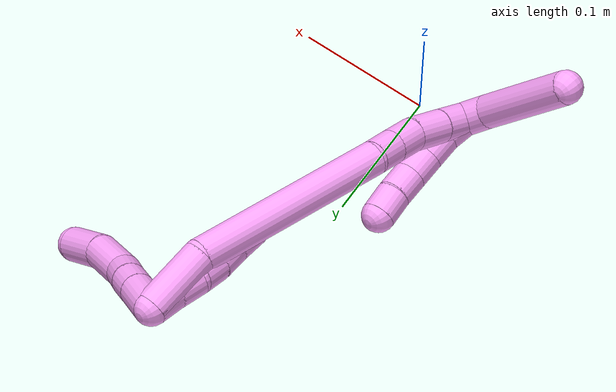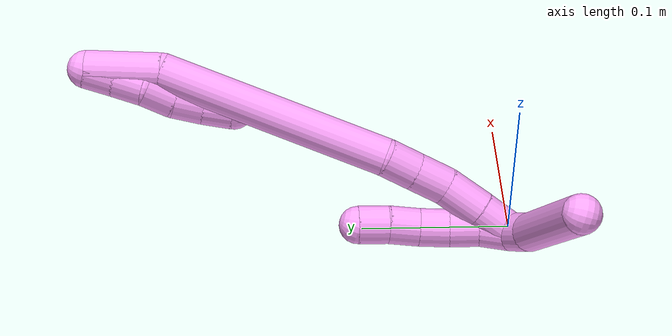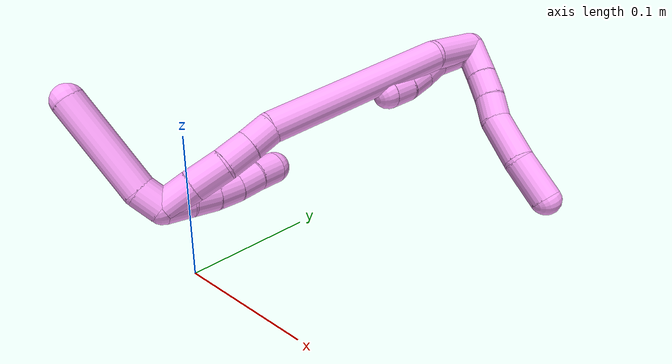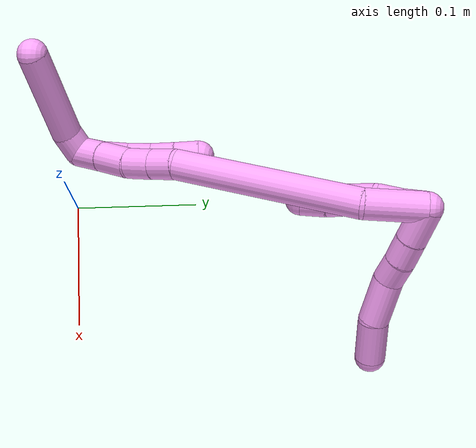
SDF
<sdf version="1.7">
 <world name="default">
  <model name="4">
   <static>0</static>
   <link name="4">
    <collision name="collision-cylinder-e_1_2_8">
     <pose>0.013207 0.004829 -0.006526 -2.5045 1.01965 -2.07581</pose>
     <geometry><cylinder><radius>0.0125</radius><length>0.031006</length></cylinder></geometry>
     <surface>
      <friction><ode><mu>1.16</mu><mu2>1.16</mu2><slip1>0</slip1><slip2>0</slip2></ode></friction>
      <contact><ode><kp>1e+06</kp><kd>1</kd><max_vel>0</max_vel><min_depth>0.001</min_depth></ode></contact>
     </surface>
    </collision>
    <visual name="visual-cylinder-e_1_2_8">
     <pose>0.013207 0.004829 -0.006526 -2.5045 1.01965 -2.07581</pose>
     <geometry><cylinder><radius>0.0125</radius><length>0.031006</length></cylinder></geometry>
     <material><ambient>1 0.65098 0.996078 1</ambient></material>
    </visual>
    <collision name="collision-cylinder-e_2_8_9">
     <pose>0.035425 0.013478 -0.017581 -2.44104 0.989086 -1.95065</pose>
     <geometry><cylinder><radius>0.0125</radius><length>0.021569</length></cylinder></geometry>
     <surface>
      <friction><ode><mu>1.16</mu><mu2>1.16</mu2><slip1>0</slip1><slip2>0</slip2></ode></friction>
      <contact><ode><kp>1e+06</kp><kd>1</kd><max_vel>0</max_vel><min_depth>0.001</min_depth></ode></contact>
     </surface>
    </collision>
    <visual name="visual-cylinder-e_2_8_9">
     <pose>0.035425 0.013478 -0.017581 -2.44104 0.989086 -1.95065</pose>
     <geometry><cylinder><radius>0.0125</radius><length>0.021569</length></cylinder></geometry>
     <material><ambient>1 0.65098 0.996078 1</ambient></material>
    </visual>
    <collision name="collision-cylinder-e_3_9_10">
     <pose>0.052556 0.021677 -0.027039 -2.41509 0.888883 -1.7943</pose>
     <geometry><cylinder><radius>0.0125</radius><length>0.020918</length></cylinder></geometry>
     <surface>
      <friction><ode><mu>1.16</mu><mu2>1.16</mu2><slip1>0</slip1><slip2>0</slip2></ode></friction>
      <contact><ode><kp>1e+06</kp><kd>1</kd><max_vel>0</max_vel><min_depth>0.001</min_depth></ode></contact>
     </surface>
    </collision>
    <visual name="visual-cylinder-e_3_9_10">
     <pose>0.052556 0.021677 -0.027039 -2.41509 0.888883 -1.7943</pose>
     <geometry><cylinder><radius>0.0125</radius><length>0.020918</length></cylinder></geometry>
     <material><ambient>1 0.65098 0.996078 1</ambient></material>
    </visual>
    <collision name="collision-cylinder-e_4_10_11">
     <pose>0.078523 0.031433 -0.038227 -2.43201 1.13766 -2.09123</pose>
     <geometry><cylinder><radius>0.0125</radius><length>0.039324</length></cylinder></geometry>
     <surface>
      <friction><ode><mu>1.16</mu><mu2>1.16</mu2><slip1>0</slip1><slip2>0</slip2></ode></friction>
      <contact><ode><kp>1e+06</kp><kd>1</kd><max_vel>0</max_vel><min_depth>0.001</min_depth></ode></contact>
     </surface>
    </collision>
    <visual name="visual-cylinder-e_4_10_11">
     <pose>0.078523 0.031433 -0.038227 -2.43201 1.13766 -2.09123</pose>
     <geometry><cylinder><radius>0.0125</radius><length>0.039324</length></cylinder></geometry>
     <material><ambient>1 0.65098 0.996078 1</ambient></material>
    </visual>
    <collision name="collision-cylinder-e_5_11_6">
     <pose>0.113171 0.044451 -0.046712 -1.85401 1.12841 -1.40112</pose>
     <geometry><cylinder><radius>0.0125</radius><length>0.037183</length></cylinder></geometry>
     <surface>
      <friction><ode><mu>1.16</mu><mu2>1.16</mu2><slip1>0</slip1><slip2>0</slip2></ode></friction>
      <contact><ode><kp>1e+06</kp><kd>1</kd><max_vel>0</max_vel><min_depth>0.001</min_depth></ode></contact>
     </surface>
    </collision>
    <visual name="visual-cylinder-e_5_11_6">
     <pose>0.113171 0.044451 -0.046712 -1.85401 1.12841 -1.40112</pose>
     <geometry><cylinder><radius>0.0125</radius><length>0.037183</length></cylinder></geometry>
     <material><ambient>1 0.65098 0.996078 1</ambient></material>
    </visual>
    <collision name="collision-cylinder-e_1_2_12">
     <pose>-0.000589 -6.9e-05 -0.009982 3.13466 -0.058922 -2.90739</pose>
     <geometry><cylinder><radius>0.0125</radius><length>0.02</length></cylinder></geometry>
     <surface>
      <friction><ode><mu>1.16</mu><mu2>1.16</mu2><slip1>0</slip1><slip2>0</slip2></ode></friction>
      <contact><ode><kp>1e+06</kp><kd>1</kd><max_vel>0</max_vel><min_depth>0.001</min_depth></ode></contact>
     </surface>
    </collision>
    <visual name="visual-cylinder-e_1_2_12">
     <pose>-0.000589 -6.9e-05 -0.009982 3.13466 -0.058922 -2.90739</pose>
     <geometry><cylinder><radius>0.0125</radius><length>0.02</length></cylinder></geometry>
     <material><ambient>1 0.65098 0.996078 1</ambient></material>
    </visual>
    <collision name="collision-cylinder-e_2_12_13">
     <pose>-0.002796 -0.000474 -0.029827 3.10755 -0.162528 -2.72945</pose>
     <geometry><cylinder><radius>0.0125</radius><length>0.02</length></cylinder></geometry>
     <surface>
      <friction><ode><mu>1.16</mu><mu2>1.16</mu2><slip1>0</slip1><slip2>0</slip2></ode></friction>
      <contact><ode><kp>1e+06</kp><kd>1</kd><max_vel>0</max_vel><min_depth>0.001</min_depth></ode></contact>
     </surface>
    </collision>
    <visual name="visual-cylinder-e_2_12_13">
     <pose>-0.002796 -0.000474 -0.029827 3.10755 -0.162528 -2.72945</pose>
     <geometry><cylinder><radius>0.0125</radius><length>0.02</length></cylinder></geometry>
     <material><ambient>1 0.65098 0.996078 1</ambient></material>
    </visual>
    <collision name="collision-cylinder-e_3_13_14">
     <pose>-0.003614 0.00086 -0.049517 -2.97321 0.080113 -0.886757</pose>
     <geometry><cylinder><radius>0.0125</radius><length>0.02</length></cylinder></geometry>
     <surface>
      <friction><ode><mu>1.16</mu><mu2>1.16</mu2><slip1>0</slip1><slip2>0</slip2></ode></friction>
      <contact><ode><kp>1e+06</kp><kd>1</kd><max_vel>0</max_vel><min_depth>0.001</min_depth></ode></contact>
     </surface>
    </collision>
    <visual name="visual-cylinder-e_3_13_14">
     <pose>-0.003614 0.00086 -0.049517 -2.97321 0.080113 -0.886757</pose>
     <geometry><cylinder><radius>0.0125</radius><length>0.02</length></cylinder></geometry>
     <material><ambient>1 0.65098 0.996078 1</ambient></material>
    </visual>
    <collision name="collision-cylinder-e_4_14_15">
     <pose>-0.001673 0.002369 -0.069277 3.12535 0.114248 2.85945</pose>
     <geometry><cylinder><radius>0.0125</radius><length>0.02</length></cylinder></geometry>
     <surface>
      <friction><ode><mu>1.16</mu><mu2>1.16</mu2><slip1>0</slip1><slip2>0</slip2></ode></friction>
      <contact><ode><kp>1e+06</kp><kd>1</kd><max_vel>0</max_vel><min_depth>0.001</min_depth></ode></contact>
     </surface>
    </collision>
    <visual name="visual-cylinder-e_4_14_15">
     <pose>-0.001673 0.002369 -0.069277 3.12535 0.114248 2.85945</pose>
     <geometry><cylinder><radius>0.0125</radius><length>0.02</length></cylinder></geometry>
     <material><ambient>1 0.65098 0.996078 1</ambient></material>
    </visual>
    <collision name="collision-cylinder-e_5_15_5">
     <pose>-0.000867 0.000823 -0.089109 3.00257 -0.033399 -0.470852</pose>
     <geometry><cylinder><radius>0.0125</radius><length>0.02</length></cylinder></geometry>
     <surface>
      <friction><ode><mu>1.16</mu><mu2>1.16</mu2><slip1>0</slip1><slip2>0</slip2></ode></friction>
      <contact><ode><kp>1e+06</kp><kd>1</kd><max_vel>0</max_vel><min_depth>0.001</min_depth></ode></contact>
     </surface>
    </collision>
    <visual name="visual-cylinder-e_5_15_5">
     <pose>-0.000867 0.000823 -0.089109 3.00257 -0.033399 -0.470852</pose>
     <geometry><cylinder><radius>0.0125</radius><length>0.02</length></cylinder></geometry>
     <material><ambient>1 0.65098 0.996078 1</ambient></material>
    </visual>
    <collision name="collision-cylinder-e_1_2_16">
     <pose>-0.000782 -0.006534 -0.02374 2.873 -0.031746 -0.233917</pose>
     <geometry><cylinder><radius>0.0125</radius><length>0.04927</length></cylinder></geometry>
     <surface>
      <friction><ode><mu>1.16</mu><mu2>1.16</mu2><slip1>0</slip1><slip2>0</slip2></ode></friction>
      <contact><ode><kp>1e+06</kp><kd>1</kd><max_vel>0</max_vel><min_depth>0.001</min_depth></ode></contact>
     </surface>
    </collision>
    <visual name="visual-cylinder-e_1_2_16">
     <pose>-0.000782 -0.006534 -0.02374 2.873 -0.031746 -0.233917</pose>
     <geometry><cylinder><radius>0.0125</radius><length>0.04927</length></cylinder></geometry>
     <material><ambient>1 0.65098 0.996078 1</ambient></material>
    </visual>
    <collision name="collision-cylinder-e_2_16_17">
     <pose>-0.01324 -0.010103 -0.123723 -3.10272 -0.151849 2.64126</pose>
     <geometry><cylinder><radius>0.0125</radius><length>0.154379</length></cylinder></geometry>
     <surface>
      <friction><ode><mu>1.16</mu><mu2>1.16</mu2><slip1>0</slip1><slip2>0</slip2></ode></friction>
      <contact><ode><kp>1e+06</kp><kd>1</kd><max_vel>0</max_vel><min_depth>0.001</min_depth></ode></contact>
     </surface>
    </collision>
    <visual name="visual-cylinder-e_2_16_17">
     <pose>-0.01324 -0.010103 -0.123723 -3.10272 -0.151849 2.64126</pose>
     <geometry><cylinder><radius>0.0125</radius><length>0.154379</length></cylinder></geometry>
     <material><ambient>1 0.65098 0.996078 1</ambient></material>
    </visual>
    <collision name="collision-cylinder-e_3_17_18">
     <pose>-0.024409 -0.004959 -0.210268 -2.93309 0.04815 -0.452404</pose>
     <geometry><cylinder><radius>0.0125</radius><length>0.021082</length></cylinder></geometry>
     <surface>
      <friction><ode><mu>1.16</mu><mu2>1.16</mu2><slip1>0</slip1><slip2>0</slip2></ode></friction>
      <contact><ode><kp>1e+06</kp><kd>1</kd><max_vel>0</max_vel><min_depth>0.001</min_depth></ode></contact>
     </surface>
    </collision>
    <visual name="visual-cylinder-e_3_17_18">
     <pose>-0.024409 -0.004959 -0.210268 -2.93309 0.04815 -0.452404</pose>
     <geometry><cylinder><radius>0.0125</radius><length>0.021082</length></cylinder></geometry>
     <material><ambient>1 0.65098 0.996078 1</ambient></material>
    </visual>
    <collision name="collision-cylinder-e_4_18_19">
     <pose>-0.02372 -0.000592 -0.231815 -2.9495 0.015855 -0.1642</pose>
     <geometry><cylinder><radius>0.0125</radius><length>0.022919</length></cylinder></geometry>
     <surface>
      <friction><ode><mu>1.16</mu><mu2>1.16</mu2><slip1>0</slip1><slip2>0</slip2></ode></friction>
      <contact><ode><kp>1e+06</kp><kd>1</kd><max_vel>0</max_vel><min_depth>0.001</min_depth></ode></contact>
     </surface>
    </collision>
    <visual name="visual-cylinder-e_4_18_19">
     <pose>-0.02372 -0.000592 -0.231815 -2.9495 0.015855 -0.1642</pose>
     <geometry><cylinder><radius>0.0125</radius><length>0.022919</length></cylinder></geometry>
     <material><ambient>1 0.65098 0.996078 1</ambient></material>
    </visual>
    <collision name="collision-cylinder-e_5_19_20">
     <pose>-0.02549 0.005566 -0.256 -2.84387 -0.143278 0.892598</pose>
     <geometry><cylinder><radius>0.0125</radius><length>0.027345</length></cylinder></geometry>
     <surface>
      <friction><ode><mu>1.16</mu><mu2>1.16</mu2><slip1>0</slip1><slip2>0</slip2></ode></friction>
      <contact><ode><kp>1e+06</kp><kd>1</kd><max_vel>0</max_vel><min_depth>0.001</min_depth></ode></contact>
     </surface>
    </collision>
    <visual name="visual-cylinder-e_5_19_20">
     <pose>-0.02549 0.005566 -0.256 -2.84387 -0.143278 0.892598</pose>
     <geometry><cylinder><radius>0.0125</radius><length>0.027345</length></cylinder></geometry>
     <material><ambient>1 0.65098 0.996078 1</ambient></material>
    </visual>
    <collision name="collision-cylinder-e_6_20_1">
     <pose>-0.028915 0.013522 -0.280695 -2.81466 -0.118049 0.688057</pose>
     <geometry><cylinder><radius>0.0125</radius><length>0.025005</length></cylinder></geometry>
     <surface>
      <friction><ode><mu>1.16</mu><mu2>1.16</mu2><slip1>0</slip1><slip2>0</slip2></ode></friction>
      <contact><ode><kp>1e+06</kp><kd>1</kd><max_vel>0</max_vel><min_depth>0.001</min_depth></ode></contact>
     </surface>
    </collision>
    <visual name="visual-cylinder-e_6_20_1">
     <pose>-0.028915 0.013522 -0.280695 -2.81466 -0.118049 0.688057</pose>
     <geometry><cylinder><radius>0.0125</radius><length>0.025005</length></cylinder></geometry>
     <material><ambient>1 0.65098 0.996078 1</ambient></material>
    </visual>
    <collision name="collision-cylinder-e_1_1_21">
     <pose>-0.028712 0.019618 -0.282822 -0.215551 0.168402 -0.018263</pose>
     <geometry><cylinder><radius>0.0125</radius><length>0.02</length></cylinder></geometry>
     <surface>
      <friction><ode><mu>1.16</mu><mu2>1.16</mu2><slip1>0</slip1><slip2>0</slip2></ode></friction>
      <contact><ode><kp>1e+06</kp><kd>1</kd><max_vel>0</max_vel><min_depth>0.001</min_depth></ode></contact>
     </surface>
    </collision>
    <visual name="visual-cylinder-e_1_1_21">
     <pose>-0.028712 0.019618 -0.282822 -0.215551 0.168402 -0.018263</pose>
     <geometry><cylinder><radius>0.0125</radius><length>0.02</length></cylinder></geometry>
     <material><ambient>1 0.65098 0.996078 1</ambient></material>
    </visual>
    <collision name="collision-cylinder-e_2_21_22">
     <pose>-0.026532 0.025096 -0.26379 -0.344072 0.050342 -0.008749</pose>
     <geometry><cylinder><radius>0.0125</radius><length>0.02</length></cylinder></geometry>
     <surface>
      <friction><ode><mu>1.16</mu><mu2>1.16</mu2><slip1>0</slip1><slip2>0</slip2></ode></friction>
      <contact><ode><kp>1e+06</kp><kd>1</kd><max_vel>0</max_vel><min_depth>0.001</min_depth></ode></contact>
     </surface>
    </collision>
    <visual name="visual-cylinder-e_2_21_22">
     <pose>-0.026532 0.025096 -0.26379 -0.344072 0.050342 -0.008749</pose>
     <geometry><cylinder><radius>0.0125</radius><length>0.02</length></cylinder></geometry>
     <material><ambient>1 0.65098 0.996078 1</ambient></material>
    </visual>
    <collision name="collision-cylinder-e_3_22_23">
     <pose>-0.026172 0.031018 -0.24472 -0.258177 -0.014334 0.001861</pose>
     <geometry><cylinder><radius>0.0125</radius><length>0.02</length></cylinder></geometry>
     <surface>
      <friction><ode><mu>1.16</mu><mu2>1.16</mu2><slip1>0</slip1><slip2>0</slip2></ode></friction>
      <contact><ode><kp>1e+06</kp><kd>1</kd><max_vel>0</max_vel><min_depth>0.001</min_depth></ode></contact>
     </surface>
    </collision>
    <visual name="visual-cylinder-e_3_22_23">
     <pose>-0.026172 0.031018 -0.24472 -0.258177 -0.014334 0.001861</pose>
     <geometry><cylinder><radius>0.0125</radius><length>0.02</length></cylinder></geometry>
     <material><ambient>1 0.65098 0.996078 1</ambient></material>
    </visual>
    <collision name="collision-cylinder-e_4_23_24">
     <pose>-0.027058 0.035195 -0.225214 -0.16361 -0.074304 0.006095</pose>
     <geometry><cylinder><radius>0.0125</radius><length>0.02</length></cylinder></geometry>
     <surface>
      <friction><ode><mu>1.16</mu><mu2>1.16</mu2><slip1>0</slip1><slip2>0</slip2></ode></friction>
      <contact><ode><kp>1e+06</kp><kd>1</kd><max_vel>0</max_vel><min_depth>0.001</min_depth></ode></contact>
     </surface>
    </collision>
    <visual name="visual-cylinder-e_4_23_24">
     <pose>-0.027058 0.035195 -0.225214 -0.16361 -0.074304 0.006095</pose>
     <geometry><cylinder><radius>0.0125</radius><length>0.02</length></cylinder></geometry>
     <material><ambient>1 0.65098 0.996078 1</ambient></material>
    </visual>
    <collision name="collision-cylinder-e_5_24_4">
     <pose>-0.028707 0.039429 -0.205764 -0.265188 -0.090803 0.012119</pose>
     <geometry><cylinder><radius>0.0125</radius><length>0.02</length></cylinder></geometry>
     <surface>
      <friction><ode><mu>1.16</mu><mu2>1.16</mu2><slip1>0</slip1><slip2>0</slip2></ode></friction>
      <contact><ode><kp>1e+06</kp><kd>1</kd><max_vel>0</max_vel><min_depth>0.001</min_depth></ode></contact>
     </surface>
    </collision>
    <visual name="visual-cylinder-e_5_24_4">
     <pose>-0.028707 0.039429 -0.205764 -0.265188 -0.090803 0.012119</pose>
     <geometry><cylinder><radius>0.0125</radius><length>0.02</length></cylinder></geometry>
     <material><ambient>1 0.65098 0.996078 1</ambient></material>
    </visual>
    <collision name="collision-cylinder-e_1_1_25">
     <pose>-0.038237 0.012408 -0.296374 2.22618 -0.884155 -1.53089</pose>
     <geometry><cylinder><radius>0.0125</radius><length>0.020299</length></cylinder></geometry>
     <surface>
      <friction><ode><mu>1.16</mu><mu2>1.16</mu2><slip1>0</slip1><slip2>0</slip2></ode></friction>
      <contact><ode><kp>1e+06</kp><kd>1</kd><max_vel>0</max_vel><min_depth>0.001</min_depth></ode></contact>
     </surface>
    </collision>
    <visual name="visual-cylinder-e_1_1_25">
     <pose>-0.038237 0.012408 -0.296374 2.22618 -0.884155 -1.53089</pose>
     <geometry><cylinder><radius>0.0125</radius><length>0.020299</length></cylinder></geometry>
     <material><ambient>1 0.65098 0.996078 1</ambient></material>
    </visual>
    <collision name="collision-cylinder-e_2_25_3">
     <pose>-0.077659 -0.016509 -0.305201 1.77391 -0.91451 -1.08627</pose>
     <geometry><cylinder><radius>0.0125</radius><length>0.079701</length></cylinder></geometry>
     <surface>
      <friction><ode><mu>1.16</mu><mu2>1.16</mu2><slip1>0</slip1><slip2>0</slip2></ode></friction>
      <contact><ode><kp>1e+06</kp><kd>1</kd><max_vel>0</max_vel><min_depth>0.001</min_depth></ode></contact>
     </surface>
    </collision>
    <visual name="visual-cylinder-e_2_25_3">
     <pose>-0.077659 -0.016509 -0.305201 1.77391 -0.91451 -1.08627</pose>
     <geometry><cylinder><radius>0.0125</radius><length>0.079701</length></cylinder></geometry>
     <material><ambient>1 0.65098 0.996078 1</ambient></material>
    </visual>
    <collision name="collision-sphere-3">
     <pose>-0.109231 -0.040325 -0.310106 0 -0 0</pose>
     <geometry><sphere><radius>0.0125</radius></sphere></geometry>
     <surface>
      <friction><ode><mu>1.16</mu><mu2>1.16</mu2><slip1>0</slip1><slip2>0</slip2></ode></friction>
      <contact><ode><kp>1e+06</kp><kd>1</kd><max_vel>0</max_vel><min_depth>0.001</min_depth></ode></contact>
     </surface>
    </collision>
    <visual name="visual-sphere-3">
     <pose>-0.109231 -0.040325 -0.310106 0 -0 0</pose>
     <geometry><sphere><radius>0.0125</radius></sphere></geometry>
     <material><ambient>1 0.65098 0.996078 1</ambient></material>
    </visual>
    <collision name="collision-sphere-25">
     <pose>-0.046086 0.007307 -0.300296 0 -0 0</pose>
     <geometry><sphere><radius>0.0125</radius></sphere></geometry>
     <surface>
      <friction><ode><mu>1.16</mu><mu2>1.16</mu2><slip1>0</slip1><slip2>0</slip2></ode></friction>
      <contact><ode><kp>1e+06</kp><kd>1</kd><max_vel>0</max_vel><min_depth>0.001</min_depth></ode></contact>
     </surface>
    </collision>
    <visual name="visual-sphere-25">
     <pose>-0.046086 0.007307 -0.300296 0 -0 0</pose>
     <geometry><sphere><radius>0.0125</radius></sphere></geometry>
     <material><ambient>1 0.65098 0.996078 1</ambient></material>
    </visual>
    <collision name="collision-sphere-4">
     <pose>-0.029614 0.042039 -0.196153 0 -0 0</pose>
     <geometry><sphere><radius>0.0125</radius></sphere></geometry>
     <surface>
      <friction><ode><mu>1.16</mu><mu2>1.16</mu2><slip1>0</slip1><slip2>0</slip2></ode></friction>
      <contact><ode><kp>1e+06</kp><kd>1</kd><max_vel>0</max_vel><min_depth>0.001</min_depth></ode></contact>
     </surface>
    </collision>
    <visual name="visual-sphere-4">
     <pose>-0.029614 0.042039 -0.196153 0 -0 0</pose>
     <geometry><sphere><radius>0.0125</radius></sphere></geometry>
     <material><ambient>1 0.65098 0.996078 1</ambient></material>
    </visual>
    <collision name="collision-sphere-24">
     <pose>-0.027801 0.036819 -0.215374 0 -0 0</pose>
     <geometry><sphere><radius>0.0125</radius></sphere></geometry>
     <surface>
      <friction><ode><mu>1.16</mu><mu2>1.16</mu2><slip1>0</slip1><slip2>0</slip2></ode></friction>
      <contact><ode><kp>1e+06</kp><kd>1</kd><max_vel>0</max_vel><min_depth>0.001</min_depth></ode></contact>
     </surface>
    </collision>
    <visual name="visual-sphere-24">
     <pose>-0.027801 0.036819 -0.215374 0 -0 0</pose>
     <geometry><sphere><radius>0.0125</radius></sphere></geometry>
     <material><ambient>1 0.65098 0.996078 1</ambient></material>
    </visual>
    <collision name="collision-sphere-23">
     <pose>-0.026316 0.03357 -0.235053 0 -0 0</pose>
     <geometry><sphere><radius>0.0125</radius></sphere></geometry>
     <surface>
      <friction><ode><mu>1.16</mu><mu2>1.16</mu2><slip1>0</slip1><slip2>0</slip2></ode></friction>
      <contact><ode><kp>1e+06</kp><kd>1</kd><max_vel>0</max_vel><min_depth>0.001</min_depth></ode></contact>
     </surface>
    </collision>
    <visual name="visual-sphere-23">
     <pose>-0.026316 0.03357 -0.235053 0 -0 0</pose>
     <geometry><sphere><radius>0.0125</radius></sphere></geometry>
     <material><ambient>1 0.65098 0.996078 1</ambient></material>
    </visual>
    <collision name="collision-sphere-22">
     <pose>-0.026029 0.028465 -0.254388 0 -0 0</pose>
     <geometry><sphere><radius>0.0125</radius></sphere></geometry>
     <surface>
      <friction><ode><mu>1.16</mu><mu2>1.16</mu2><slip1>0</slip1><slip2>0</slip2></ode></friction>
      <contact><ode><kp>1e+06</kp><kd>1</kd><max_vel>0</max_vel><min_depth>0.001</min_depth></ode></contact>
     </surface>
    </collision>
    <visual name="visual-sphere-22">
     <pose>-0.026029 0.028465 -0.254388 0 -0 0</pose>
     <geometry><sphere><radius>0.0125</radius></sphere></geometry>
     <material><ambient>1 0.65098 0.996078 1</ambient></material>
    </visual>
    <collision name="collision-sphere-21">
     <pose>-0.027036 0.021727 -0.273192 0 -0 0</pose>
     <geometry><sphere><radius>0.0125</radius></sphere></geometry>
     <surface>
      <friction><ode><mu>1.16</mu><mu2>1.16</mu2><slip1>0</slip1><slip2>0</slip2></ode></friction>
      <contact><ode><kp>1e+06</kp><kd>1</kd><max_vel>0</max_vel><min_depth>0.001</min_depth></ode></contact>
     </surface>
    </collision>
    <visual name="visual-sphere-21">
     <pose>-0.027036 0.021727 -0.273192 0 -0 0</pose>
     <geometry><sphere><radius>0.0125</radius></sphere></geometry>
     <material><ambient>1 0.65098 0.996078 1</ambient></material>
    </visual>
    <collision name="collision-sphere-1">
     <pose>-0.030388 0.017509 -0.292453 0 -0 0</pose>
     <geometry><sphere><radius>0.0125</radius></sphere></geometry>
     <surface>
      <friction><ode><mu>1.16</mu><mu2>1.16</mu2><slip1>0</slip1><slip2>0</slip2></ode></friction>
      <contact><ode><kp>1e+06</kp><kd>1</kd><max_vel>0</max_vel><min_depth>0.001</min_depth></ode></contact>
     </surface>
    </collision>
    <visual name="visual-sphere-1">
     <pose>-0.030388 0.017509 -0.292453 0 -0 0</pose>
     <geometry><sphere><radius>0.0125</radius></sphere></geometry>
     <material><ambient>1 0.65098 0.996078 1</ambient></material>
    </visual>
    <collision name="collision-sphere-6">
     <pose>0.129972 0.052093 -0.048936 0 -0 0</pose>
     <geometry><sphere><radius>0.0125</radius></sphere></geometry>
     <surface>
      <friction><ode><mu>1.16</mu><mu2>1.16</mu2><slip1>0</slip1><slip2>0</slip2></ode></friction>
      <contact><ode><kp>1e+06</kp><kd>1</kd><max_vel>0</max_vel><min_depth>0.001</min_depth></ode></contact>
     </surface>
    </collision>
    <visual name="visual-sphere-6">
     <pose>0.129972 0.052093 -0.048936 0 -0 0</pose>
     <geometry><sphere><radius>0.0125</radius></sphere></geometry>
     <material><ambient>1 0.65098 0.996078 1</ambient></material>
    </visual>
    <collision name="collision-sphere-11">
     <pose>0.096369 0.036809 -0.044488 0 -0 0</pose>
     <geometry><sphere><radius>0.0125</radius></sphere></geometry>
     <surface>
      <friction><ode><mu>1.16</mu><mu2>1.16</mu2><slip1>0</slip1><slip2>0</slip2></ode></friction>
      <contact><ode><kp>1e+06</kp><kd>1</kd><max_vel>0</max_vel><min_depth>0.001</min_depth></ode></contact>
     </surface>
    </collision>
    <visual name="visual-sphere-11">
     <pose>0.096369 0.036809 -0.044488 0 -0 0</pose>
     <geometry><sphere><radius>0.0125</radius></sphere></geometry>
     <material><ambient>1 0.65098 0.996078 1</ambient></material>
    </visual>
    <collision name="collision-sphere-10">
     <pose>0.060676 0.026056 -0.031967 0 -0 0</pose>
     <geometry><sphere><radius>0.0125</radius></sphere></geometry>
     <surface>
      <friction><ode><mu>1.16</mu><mu2>1.16</mu2><slip1>0</slip1><slip2>0</slip2></ode></friction>
      <contact><ode><kp>1e+06</kp><kd>1</kd><max_vel>0</max_vel><min_depth>0.001</min_depth></ode></contact>
     </surface>
    </collision>
    <visual name="visual-sphere-10">
     <pose>0.060676 0.026056 -0.031967 0 -0 0</pose>
     <geometry><sphere><radius>0.0125</radius></sphere></geometry>
     <material><ambient>1 0.65098 0.996078 1</ambient></material>
    </visual>
    <collision name="collision-sphere-9">
     <pose>0.044436 0.017298 -0.022111 0 -0 0</pose>
     <geometry><sphere><radius>0.0125</radius></sphere></geometry>
     <surface>
      <friction><ode><mu>1.16</mu><mu2>1.16</mu2><slip1>0</slip1><slip2>0</slip2></ode></friction>
      <contact><ode><kp>1e+06</kp><kd>1</kd><max_vel>0</max_vel><min_depth>0.001</min_depth></ode></contact>
     </surface>
    </collision>
    <visual name="visual-sphere-9">
     <pose>0.044436 0.017298 -0.022111 0 -0 0</pose>
     <geometry><sphere><radius>0.0125</radius></sphere></geometry>
     <material><ambient>1 0.65098 0.996078 1</ambient></material>
    </visual>
    <collision name="collision-sphere-2">
     <geometry><sphere><radius>0.0125</radius></sphere></geometry>
     <surface>
      <friction><ode><mu>1.16</mu><mu2>1.16</mu2><slip1>0</slip1><slip2>0</slip2></ode></friction>
      <contact><ode><kp>1e+06</kp><kd>1</kd><max_vel>0</max_vel><min_depth>0.001</min_depth></ode></contact>
     </surface>
    </collision>
    <visual name="visual-sphere-2">
     <geometry><sphere><radius>0.0125</radius></sphere></geometry>
     <material><ambient>1 0.65098 0.996078 1</ambient></material>
    </visual>
    <collision name="collision-sphere-19">
     <pose>-0.023538 0.001596 -0.243063 0 -0 0</pose>
     <geometry><sphere><radius>0.0125</radius></sphere></geometry>
     <surface>
      <friction><ode><mu>1.16</mu><mu2>1.16</mu2><slip1>0</slip1><slip2>0</slip2></ode></friction>
      <contact><ode><kp>1e+06</kp><kd>1</kd><max_vel>0</max_vel><min_depth>0.001</min_depth></ode></contact>
     </surface>
    </collision>
    <visual name="visual-sphere-19">
     <pose>-0.023538 0.001596 -0.243063 0 -0 0</pose>
     <geometry><sphere><radius>0.0125</radius></sphere></geometry>
     <material><ambient>1 0.65098 0.996078 1</ambient></material>
    </visual>
    <collision name="collision-sphere-8">
     <pose>0.026414 0.009659 -0.013051 0 -0 0</pose>
     <geometry><sphere><radius>0.0125</radius></sphere></geometry>
     <surface>
      <friction><ode><mu>1.16</mu><mu2>1.16</mu2><slip1>0</slip1><slip2>0</slip2></ode></friction>
      <contact><ode><kp>1e+06</kp><kd>1</kd><max_vel>0</max_vel><min_depth>0.001</min_depth></ode></contact>
     </surface>
    </collision>
    <visual name="visual-sphere-8">
     <pose>0.026414 0.009659 -0.013051 0 -0 0</pose>
     <geometry><sphere><radius>0.0125</radius></sphere></geometry>
     <material><ambient>1 0.65098 0.996078 1</ambient></material>
    </visual>
    <collision name="collision-sphere-12">
     <pose>-0.001178 -0.000138 -0.019965 0 -0 0</pose>
     <geometry><sphere><radius>0.0125</radius></sphere></geometry>
     <surface>
      <friction><ode><mu>1.16</mu><mu2>1.16</mu2><slip1>0</slip1><slip2>0</slip2></ode></friction>
      <contact><ode><kp>1e+06</kp><kd>1</kd><max_vel>0</max_vel><min_depth>0.001</min_depth></ode></contact>
     </surface>
    </collision>
    <visual name="visual-sphere-12">
     <pose>-0.001178 -0.000138 -0.019965 0 -0 0</pose>
     <geometry><sphere><radius>0.0125</radius></sphere></geometry>
     <material><ambient>1 0.65098 0.996078 1</ambient></material>
    </visual>
    <collision name="collision-sphere-13">
     <pose>-0.004414 -0.00081 -0.03969 0 -0 0</pose>
     <geometry><sphere><radius>0.0125</radius></sphere></geometry>
     <surface>
      <friction><ode><mu>1.16</mu><mu2>1.16</mu2><slip1>0</slip1><slip2>0</slip2></ode></friction>
      <contact><ode><kp>1e+06</kp><kd>1</kd><max_vel>0</max_vel><min_depth>0.001</min_depth></ode></contact>
     </surface>
    </collision>
    <visual name="visual-sphere-13">
     <pose>-0.004414 -0.00081 -0.03969 0 -0 0</pose>
     <geometry><sphere><radius>0.0125</radius></sphere></geometry>
     <material><ambient>1 0.65098 0.996078 1</ambient></material>
    </visual>
    <collision name="collision-sphere-14">
     <pose>-0.002813 0.002531 -0.059344 0 -0 0</pose>
     <geometry><sphere><radius>0.0125</radius></sphere></geometry>
     <surface>
      <friction><ode><mu>1.16</mu><mu2>1.16</mu2><slip1>0</slip1><slip2>0</slip2></ode></friction>
      <contact><ode><kp>1e+06</kp><kd>1</kd><max_vel>0</max_vel><min_depth>0.001</min_depth></ode></contact>
     </surface>
    </collision>
    <visual name="visual-sphere-14">
     <pose>-0.002813 0.002531 -0.059344 0 -0 0</pose>
     <geometry><sphere><radius>0.0125</radius></sphere></geometry>
     <material><ambient>1 0.65098 0.996078 1</ambient></material>
    </visual>
    <collision name="collision-sphere-15">
     <pose>-0.000533 0.002208 -0.079211 0 -0 0</pose>
     <geometry><sphere><radius>0.0125</radius></sphere></geometry>
     <surface>
      <friction><ode><mu>1.16</mu><mu2>1.16</mu2><slip1>0</slip1><slip2>0</slip2></ode></friction>
      <contact><ode><kp>1e+06</kp><kd>1</kd><max_vel>0</max_vel><min_depth>0.001</min_depth></ode></contact>
     </surface>
    </collision>
    <visual name="visual-sphere-15">
     <pose>-0.000533 0.002208 -0.079211 0 -0 0</pose>
     <geometry><sphere><radius>0.0125</radius></sphere></geometry>
     <material><ambient>1 0.65098 0.996078 1</ambient></material>
    </visual>
    <collision name="collision-sphere-5">
     <pose>-0.001201 -0.000562 -0.099007 0 -0 0</pose>
     <geometry><sphere><radius>0.0125</radius></sphere></geometry>
     <surface>
      <friction><ode><mu>1.16</mu><mu2>1.16</mu2><slip1>0</slip1><slip2>0</slip2></ode></friction>
      <contact><ode><kp>1e+06</kp><kd>1</kd><max_vel>0</max_vel><min_depth>0.001</min_depth></ode></contact>
     </surface>
    </collision>
    <visual name="visual-sphere-5">
     <pose>-0.001201 -0.000562 -0.099007 0 -0 0</pose>
     <geometry><sphere><radius>0.0125</radius></sphere></geometry>
     <material><ambient>1 0.65098 0.996078 1</ambient></material>
    </visual>
    <collision name="collision-sphere-16">
     <pose>-0.001564 -0.013068 -0.047479 0 -0 0</pose>
     <geometry><sphere><radius>0.0125</radius></sphere></geometry>
     <surface>
      <friction><ode><mu>1.16</mu><mu2>1.16</mu2><slip1>0</slip1><slip2>0</slip2></ode></friction>
      <contact><ode><kp>1e+06</kp><kd>1</kd><max_vel>0</max_vel><min_depth>0.001</min_depth></ode></contact>
     </surface>
    </collision>
    <visual name="visual-sphere-16">
     <pose>-0.001564 -0.013068 -0.047479 0 -0 0</pose>
     <geometry><sphere><radius>0.0125</radius></sphere></geometry>
     <material><ambient>1 0.65098 0.996078 1</ambient></material>
    </visual>
    <collision name="collision-sphere-17">
     <pose>-0.024916 -0.007138 -0.199967 0 -0 0</pose>
     <geometry><sphere><radius>0.0125</radius></sphere></geometry>
     <surface>
      <friction><ode><mu>1.16</mu><mu2>1.16</mu2><slip1>0</slip1><slip2>0</slip2></ode></friction>
      <contact><ode><kp>1e+06</kp><kd>1</kd><max_vel>0</max_vel><min_depth>0.001</min_depth></ode></contact>
     </surface>
    </collision>
    <visual name="visual-sphere-17">
     <pose>-0.024916 -0.007138 -0.199967 0 -0 0</pose>
     <geometry><sphere><radius>0.0125</radius></sphere></geometry>
     <material><ambient>1 0.65098 0.996078 1</ambient></material>
    </visual>
    <collision name="collision-sphere-18">
     <pose>-0.023902 -0.002779 -0.220568 0 -0 0</pose>
     <geometry><sphere><radius>0.0125</radius></sphere></geometry>
     <surface>
      <friction><ode><mu>1.16</mu><mu2>1.16</mu2><slip1>0</slip1><slip2>0</slip2></ode></friction>
      <contact><ode><kp>1e+06</kp><kd>1</kd><max_vel>0</max_vel><min_depth>0.001</min_depth></ode></contact>
     </surface>
    </collision>
    <visual name="visual-sphere-18">
     <pose>-0.023902 -0.002779 -0.220568 0 -0 0</pose>
     <geometry><sphere><radius>0.0125</radius></sphere></geometry>
     <material><ambient>1 0.65098 0.996078 1</ambient></material>
    </visual>
    <collision name="collision-sphere-20">
     <pose>-0.027443 0.009535 -0.268937 0 -0 0</pose>
     <geometry><sphere><radius>0.0125</radius></sphere></geometry>
     <surface>
      <friction><ode><mu>1.16</mu><mu2>1.16</mu2><slip1>0</slip1><slip2>0</slip2></ode></friction>
      <contact><ode><kp>1e+06</kp><kd>1</kd><max_vel>0</max_vel><min_depth>0.001</min_depth></ode></contact>
     </surface>
    </collision>
    <visual name="visual-sphere-20">
     <pose>-0.027443 0.009535 -0.268937 0 -0 0</pose>
     <geometry><sphere><radius>0.0125</radius></sphere></geometry>
     <material><ambient>1 0.65098 0.996078 1</ambient></material>
    </visual>
    <inertial>
     <pose>-0.006523 0.005716 -0.144218 0 -0 0</pose>
     <mass>0.75</mass>
     <inertia>
      <ixx>-0.000123</ixx>
      <ixy>0</ixy>
      <ixz>0</ixz>
      <iyy>0.000425</iyy>
      <iyz>0</iyz>
      <izz>4.9e-05</izz>
     </inertia>
    </inertial>
   </link>
   <pose>0.032064 0.278684 0.115853 -1.2985 0.304604 -0.056336</pose>
  </model>
 </world>
</sdf>
